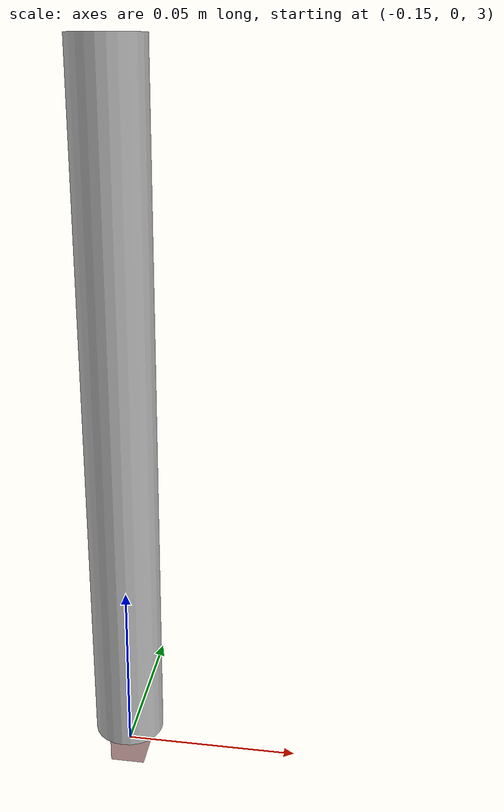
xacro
<?xml version="1.0"?>
<robot xmlns:xacro="http://ros.org/wiki/xacro" name="ur5" >

    <xacro:include filename="$(find final_project)/urdf/camera/r200.gazebo"/>

    <!-- some constants -->
    <xacro:property name="PI" value="3.1415926"/>

    <xacro:property name="pole_length" value="0.2"/>    <!-- with half camera length -->
    <xacro:property name="pole_radius" value="0.01"/>

    <xacro:property name="camera_link" value="0.01"/>
        <!-- marginal view -->
    <!-- center view -->
    <xacro:property name="camera_roll" value="${PI}"/>
    <xacro:property name="camera_pitch" value="0"/>
    <xacro:property name="camera_yaw" value="0"/>

    <!-- center view -->
    <xacro:property name="fixed_x" value="-0.15"/>   <!-- swift left a little to catch better motion of EduMIP -->
    <xacro:property name="fixed_y" value="0"/>
    <xacro:property name="fixed_z" value="3.2"/>  <!-- remember to mius pole_length to get camera's height -->

        <!-- marginal view -->

    <xacro:property name="artag_x" value="0.5"/>
    <xacro:property name="artag_y" value="0.5"/>
    <xacro:property name="artag_z" value="1.51"/>
    <xacro:property name="artag_yaw" value="${PI/3}"/>

    <!-- fixing point -->
    <link name="world"/>

    <link name="fixed_base"/>

    <joint name="fixed_joint" type="fixed">
        <origin xyz="${fixed_x} ${fixed_y} ${fixed_z}" rpy="0 0 0"/>
        <parent link="world"/>
        <child link="fixed_base"/>
    </joint>

    <!-- a streching pole -->
    <link name="pole">
        <collision>
            <geometry>
                <cylinder radius="${pole_radius}" length="${pole_length-camera_link/2}"/>
            </geometry>>
            <origin rpy="0 0 0" xyz="0 0 ${(pole_length-camera_link/2)/2}"/>
        </collision>
        <visual>
            <geometry>
                <cylinder radius="${pole_radius}" length="${pole_length-camera_link/2}"/>
            </geometry>>
            <origin rpy="0 0 0" xyz="0 0 ${(pole_length-camera_link/2)/2}"/>
            <material name="light_grey">
                <color rgba="0.7 0.7 0.7 1.0"/>
            </material>
        </visual>
        <inertial>
            <origin rpy="0 0 0" xyz="0 0 ${(pole_length-camera_link/2)/2}"/>
            <mass value="0.5"/>
            <inertia ixx="1.0e-5" ixy="0.0" ixz="0.0" iyy="1.0e-5" iyz="0.0" izz="1.0e-5"/>
        </inertial>
    </link>

    <gazebo reference="pole">
        <material>Gazebo/Grey</material>
        <mu1>0.2</mu1>
        <mu2>0.2</mu2>
    </gazebo>

    <joint name="pole_joint" type="fixed">
        <origin xyz="0 0 ${-pole_length+camera_link/2}" rpy="0 0 0"/>
        <parent link="fixed_base"/>
        <child link="pole"/>
    </joint>

    <!-- camera -->
    <link name="camera_link">
        <collision>
            <origin xyz="0 0 0" rpy="0 0 0"/>
            <geometry>
                <box size="${camera_link} ${camera_link} ${camera_link}"/>
            </geometry>
        </collision>

        <visual>
            <origin xyz="0 0 0" rpy="0 0 0"/>
            <geometry>
                <box size="${camera_link} ${camera_link} ${camera_link}"/>
            </geometry>
            <material name="indigo">
                <color rgba="0.3 0.0 0.0 0.5"/>
            </material>
        </visual>

        <inertial>
            <mass value="1e-5"/>
            <origin xyz="0 0 ${camera_link/2}" rpy="0 0 0"/>
            <inertia ixx="1e-6" ixy="0" ixz="0" iyy="1e-6" iyz="0" izz="1e-6"/>
        </inertial>
    </link>

    <joint name="camera_joint" type="fixed">
        <origin xyz="0 0 ${-camera_link/2}" rpy="${camera_roll} ${camera_pitch} ${camera_yaw}"/>
        <parent link="pole"/>
        <child link="camera_link"/>
    </joint>

    <gazebo reference="camera_link">
        <material>Gazebo/Indigo</material>
        <mu1>0.2</mu1>
        <mu2>0.2</mu2>
    </gazebo>

    <link name="camera_sensor"/>

    <joint name="camera_sensor_joint" type="fixed">
        <origin xyz="0 0 0" rpy="0 ${-PI/2} ${PI/2}"/>
        <parent link="camera_link"/>
        <child link="camera_sensor"/>
    </joint>

</robot>
